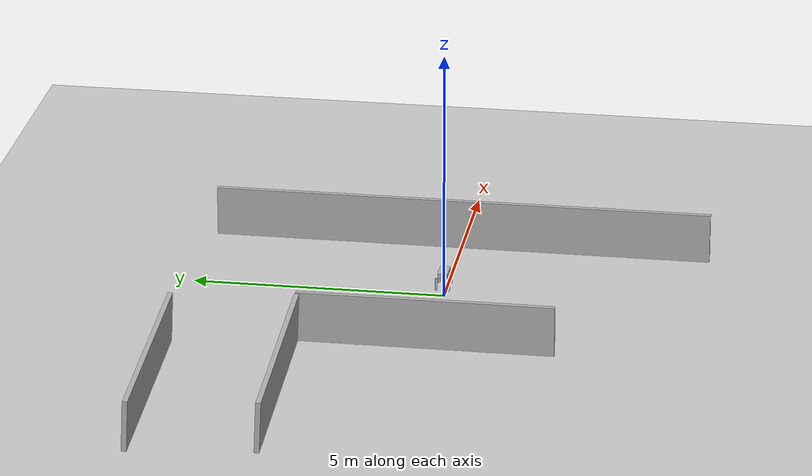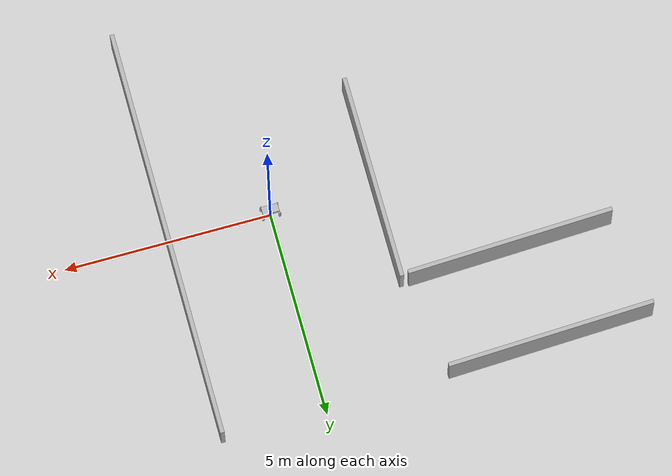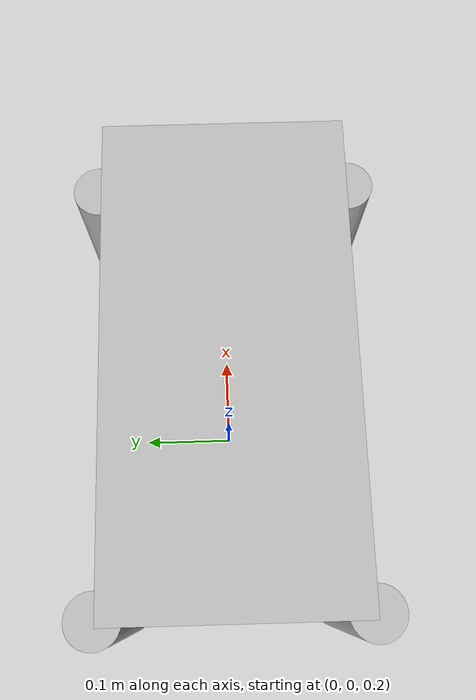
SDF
<sdf version='1.9'>
  <world name='quadruped_world'>
    <physics name='1ms' type='ignored'>
      <max_step_size>0.001</max_step_size>
      <real_time_factor>1</real_time_factor>
      <dart>
        <solver>
          <solver_type>pgs</solver_type>
        </solver>
      </dart>
      <real_time_update_rate>1000</real_time_update_rate>
    </physics>
    <plugin name='ignition::sim::systems::Physics' filename='ignition-gazebo-physics-system'/>
    <plugin name='ignition::sim::systems::UserCommands' filename='ignition-gazebo-user-commands-system'/>
    <plugin name='ignition::sim::systems::SceneBroadcaster' filename='ignition-gazebo-scene-broadcaster-system'/>
    <plugin name='ignition::sim::systems::Contact' filename='ignition-gazebo-contact-system'/>
    <gravity>0 0 -9.8</gravity>
    <magnetic_field>6e-06 2.3e-05 -4.2e-05</magnetic_field>
    <atmosphere type='adiabatic'/>
    <scene>
      <ambient>0.4 0.4 0.4 1</ambient>
      <background>0.7 0.7 0.7 1</background>
      <shadows>true</shadows>
    </scene>
    <model name='ground_plane'>
      <static>true</static>
      <link name='link'>
        <collision name='collision'>
          <geometry>
            <plane>
              <normal>0 0 1</normal>
              <size>100 100</size>
            </plane>
          </geometry>
          <surface>
            <friction>
              <ode>
                <mu>100</mu>
                <mu2>100</mu2>
              </ode>
            </friction>
            <bounce/>
            <contact/>
          </surface>
        </collision>
        <visual name='visual'>
          <geometry>
            <plane>
              <normal>0 0 1</normal>
              <size>100 100</size>
            </plane>
          </geometry>
          <material>
            <ambient>0.8 0.8 0.8 1</ambient>
            <diffuse>0.8 0.8 0.8 1</diffuse>
            <specular>0.8 0.8 0.8 1</specular>
          </material>
        </visual>
        <pose>0 0 0 0 -0 0</pose>
        <inertial>
          <pose>0 0 0 0 -0 0</pose>
          <mass>1</mass>
          <inertia>
            <ixx>1</ixx>
            <ixy>0</ixy>
            <ixz>0</ixz>
            <iyy>1</iyy>
            <iyz>0</iyz>
            <izz>1</izz>
          </inertia>
        </inertial>
        <enable_wind>false</enable_wind>
      </link>
      <pose>0 0 0 0 -0 0</pose>
      <self_collide>false</self_collide>
    </model>
    <model name='chai_back_wall'>
      <static>true</static>
      <pose>2.5 0 0.5 0 -0 0</pose>
      <link name='link'>
        <collision name='collision'>
          <geometry>
            <box>
              <size>0.1 10 1</size>
            </box>
          </geometry>
          <surface>
            <friction>
              <ode/>
            </friction>
            <bounce/>
            <contact/>
          </surface>
        </collision>
        <visual name='visual'>
          <geometry>
            <box>
              <size>0.1 10 1</size>
            </box>
          </geometry>
          <material>
            <ambient>0.7 0.7 0.7 1</ambient>
            <diffuse>0.7 0.7 0.7 1</diffuse>
            <specular>0.01 0.01 0.01 1</specular>
          </material>
        </visual>
        <pose>0 0 0 0 -0 0</pose>
        <inertial>
          <pose>0 0 0 0 -0 0</pose>
          <mass>1</mass>
          <inertia>
            <ixx>1</ixx>
            <ixy>0</ixy>
            <ixz>0</ixz>
            <iyy>1</iyy>
            <iyz>0</iyz>
            <izz>1</izz>
          </inertia>
        </inertial>
        <enable_wind>false</enable_wind>
      </link>
      <self_collide>false</self_collide>
    </model>
    <model name='chai_front_wall'>
      <static>true</static>
      <pose>-2.5 0 0.5 0 -0 0</pose>
      <link name='link'>
        <collision name='collision'>
          <geometry>
            <box>
              <size>0.1 5 1</size>
            </box>
          </geometry>
          <surface>
            <friction>
              <ode/>
            </friction>
            <bounce/>
            <contact/>
          </surface>
        </collision>
        <visual name='visual'>
          <geometry>
            <box>
              <size>0.1 5 1</size>
            </box>
          </geometry>
          <material>
            <ambient>0.7 0.7 0.7 1</ambient>
            <diffuse>0.7 0.7 0.7 1</diffuse>
            <specular>0.01 0.01 0.01 1</specular>
          </material>
        </visual>
        <pose>0 0 0 0 -0 0</pose>
        <inertial>
          <pose>0 0 0 0 -0 0</pose>
          <mass>1</mass>
          <inertia>
            <ixx>1</ixx>
            <ixy>0</ixy>
            <ixz>0</ixz>
            <iyy>1</iyy>
            <iyz>0</iyz>
            <izz>1</izz>
          </inertia>
        </inertial>
        <enable_wind>false</enable_wind>
      </link>
      <self_collide>false</self_collide>
    </model>
    <model name='chai_enterance_wall'>
      <static>true</static>
      <pose>-5.15868 2.37558 0.531992 0.001853 -0.043091 1.60937</pose>
      <link name='link'>
        <collision name='collision'>
          <geometry>
            <box>
              <size>0.1 5 1</size>
            </box>
          </geometry>
          <surface>
            <friction>
              <ode/>
            </friction>
            <bounce/>
            <contact/>
          </surface>
        </collision>
        <visual name='visual'>
          <geometry>
            <box>
              <size>0.1 5 1</size>
            </box>
          </geometry>
          <material>
            <ambient>0.7 0.7 0.7 1</ambient>
            <diffuse>0.7 0.7 0.7 1</diffuse>
            <specular>0.01 0.01 0.01 1</specular>
          </material>
        </visual>
        <pose>0 0 0 0 -0 0</pose>
        <inertial>
          <pose>0 0 0 0 -0 0</pose>
          <mass>1</mass>
          <inertia>
            <ixx>1</ixx>
            <ixy>0</ixy>
            <ixz>0</ixz>
            <iyy>1</iyy>
            <iyz>0</iyz>
            <izz>1</izz>
          </inertia>
        </inertial>
        <enable_wind>false</enable_wind>
      </link>
      <self_collide>false</self_collide>
    </model>
    <model name='quadruped'>
      <link name='base_link'>
        <inertial>
          <pose>0 0 0 0 -0 0</pose>
          <mass>5</mass>
          <inertia>
            <ixx>0.10000000000000001</ixx>
            <ixy>0</ixy>
            <ixz>0</ixz>
            <iyy>0.10000000000000001</iyy>
            <iyz>0</iyz>
            <izz>0.10000000000000001</izz>
          </inertia>
        </inertial>
        <collision name='base_link_collision'>
          <pose>0 0 0 0 0 0</pose>
          <geometry>
            <box>
              <size>0.4 0.2 0.1</size>
            </box>
          </geometry>
          <surface>
            <friction>
              <ode/>
            </friction>
            <bounce/>
            <contact/>
          </surface>
        </collision>
        <visual name='base_link_visual'>
          <pose>0 0 0 0 0 0</pose>
          <geometry>
            <box>
              <size>0.4 0.2 0.1</size>
            </box>
          </geometry>
        </visual>
        <pose>0 0 0 0 -0 0</pose>
        <enable_wind>false</enable_wind>
      </link>
      <joint name='BL_joint' type='revolute'>
        <pose>0 0 0 0 -0 0</pose>
        <parent>base_link</parent>
        <child>BL_leg</child>
        <axis>
          <xyz>0 1 0</xyz>
          <limit>
            <lower>-1.5700000000000001</lower>
            <upper>1.5700000000000001</upper>
            <effort>1000</effort>
            <velocity>10</velocity>
            <stiffness>100000000</stiffness>
            <dissipation>1</dissipation>
          </limit>
          <dynamics>
            <spring_reference>0</spring_reference>
            <spring_stiffness>0</spring_stiffness>
            <damping>0</damping>
            <friction>0</friction>
          </dynamics>
        </axis>
      </joint>
      <link name='BL_leg'>
        <pose>-0.2 0.12 -0.05 0 -0 0</pose>
        <inertial>
          <pose>0 0 -0.125 0 -0 0</pose>
          <mass>0.5</mass>
          <inertia>
            <ixx>0.01</ixx>
            <ixy>0</ixy>
            <ixz>0</ixz>
            <iyy>0.01</iyy>
            <iyz>0</iyz>
            <izz>0.01</izz>
          </inertia>
        </inertial>
        <collision name='BL_leg_collision'>
          <pose>0 0 -0.125 0 0 0</pose>
          <geometry>
            <cylinder>
              <length>0.25</length>
              <radius>0.025000000000000001</radius>
            </cylinder>
          </geometry>
          <surface>
            <friction>
              <ode/>
            </friction>
            <bounce/>
            <contact/>
          </surface>
        </collision>
        <visual name='BL_leg_visual'>
          <pose>0 0 -0.125 0 0 0</pose>
          <geometry>
            <cylinder>
              <length>0.25</length>
              <radius>0.025000000000000001</radius>
            </cylinder>
          </geometry>
        </visual>
        <enable_wind>false</enable_wind>
      </link>
      <joint name='BR_joint' type='revolute'>
        <pose>0 0 0 0 -0 0</pose>
        <parent>base_link</parent>
        <child>BR_leg</child>
        <axis>
          <xyz>0 1 0</xyz>
          <limit>
            <lower>-1.5700000000000001</lower>
            <upper>1.5700000000000001</upper>
            <effort>1000</effort>
            <velocity>10</velocity>
            <stiffness>100000000</stiffness>
            <dissipation>1</dissipation>
          </limit>
          <dynamics>
            <spring_reference>0</spring_reference>
            <spring_stiffness>0</spring_stiffness>
            <damping>0</damping>
            <friction>0</friction>
          </dynamics>
        </axis>
      </joint>
      <link name='BR_leg'>
        <pose>-0.2 -0.12 -0.05 0 -0 0</pose>
        <inertial>
          <pose>0 0 -0.125 0 -0 0</pose>
          <mass>0.5</mass>
          <inertia>
            <ixx>0.01</ixx>
            <ixy>0</ixy>
            <ixz>0</ixz>
            <iyy>0.01</iyy>
            <iyz>0</iyz>
            <izz>0.01</izz>
          </inertia>
        </inertial>
        <collision name='BR_leg_collision'>
          <pose>0 0 -0.125 0 0 0</pose>
          <geometry>
            <cylinder>
              <length>0.25</length>
              <radius>0.025000000000000001</radius>
            </cylinder>
          </geometry>
          <surface>
            <friction>
              <ode/>
            </friction>
            <bounce/>
            <contact/>
          </surface>
        </collision>
        <visual name='BR_leg_visual'>
          <pose>0 0 -0.125 0 0 0</pose>
          <geometry>
            <cylinder>
              <length>0.25</length>
              <radius>0.025000000000000001</radius>
            </cylinder>
          </geometry>
        </visual>
        <enable_wind>false</enable_wind>
      </link>
      <joint name='FL_joint' type='revolute'>
        <pose>0 0 0 0 -0 0</pose>
        <parent>base_link</parent>
        <child>FL_leg</child>
        <axis>
          <xyz>0 1 0</xyz>
          <limit>
            <lower>-1.5700000000000001</lower>
            <upper>1.5700000000000001</upper>
            <effort>1000</effort>
            <velocity>10</velocity>
            <stiffness>100000000</stiffness>
            <dissipation>1</dissipation>
          </limit>
          <dynamics>
            <spring_reference>0</spring_reference>
            <spring_stiffness>0</spring_stiffness>
            <damping>0</damping>
            <friction>0</friction>
          </dynamics>
        </axis>
      </joint>
      <link name='FL_leg'>
        <pose>0.2 0.12 -0.05 0 -0 0</pose>
        <inertial>
          <pose>0 0 -0.125 0 -0 0</pose>
          <mass>0.5</mass>
          <inertia>
            <ixx>0.01</ixx>
            <ixy>0</ixy>
            <ixz>0</ixz>
            <iyy>0.01</iyy>
            <iyz>0</iyz>
            <izz>0.01</izz>
          </inertia>
        </inertial>
        <collision name='FL_leg_collision'>
          <pose>0 0 -0.125 0 0 0</pose>
          <geometry>
            <cylinder>
              <length>0.25</length>
              <radius>0.025000000000000001</radius>
            </cylinder>
          </geometry>
          <surface>
            <friction>
              <ode/>
            </friction>
            <bounce/>
            <contact/>
          </surface>
        </collision>
        <visual name='FL_leg_visual'>
          <pose>0 0 -0.125 0 0 0</pose>
          <geometry>
            <cylinder>
              <length>0.25</length>
              <radius>0.025000000000000001</radius>
            </cylinder>
          </geometry>
        </visual>
        <enable_wind>false</enable_wind>
      </link>
      <joint name='FR_joint' type='revolute'>
        <pose>0 0 0 0 -0 0</pose>
        <parent>base_link</parent>
        <child>FR_leg</child>
        <axis>
          <xyz>0 1 0</xyz>
          <limit>
            <lower>-1.5700000000000001</lower>
            <upper>1.5700000000000001</upper>
            <effort>1000</effort>
            <velocity>10</velocity>
            <stiffness>100000000</stiffness>
            <dissipation>1</dissipation>
          </limit>
          <dynamics>
            <spring_reference>0</spring_reference>
            <spring_stiffness>0</spring_stiffness>
            <damping>0</damping>
            <friction>0</friction>
          </dynamics>
        </axis>
      </joint>
      <link name='FR_leg'>
        <pose>0.2 -0.12 -0.05 0 -0 0</pose>
        <inertial>
          <pose>0 0 -0.125 0 -0 0</pose>
          <mass>0.5</mass>
          <inertia>
            <ixx>0.01</ixx>
            <ixy>0</ixy>
            <ixz>0</ixz>
            <iyy>0.01</iyy>
            <iyz>0</iyz>
            <izz>0.01</izz>
          </inertia>
        </inertial>
        <collision name='FR_leg_collision'>
          <pose>0 0 -0.125 0 0 0</pose>
          <geometry>
            <cylinder>
              <length>0.25</length>
              <radius>0.025000000000000001</radius>
            </cylinder>
          </geometry>
          <surface>
            <friction>
              <ode/>
            </friction>
            <bounce/>
            <contact/>
          </surface>
        </collision>
        <visual name='FR_leg_visual'>
          <pose>0 0 -0.125 0 0 0</pose>
          <geometry>
            <cylinder>
              <length>0.25</length>
              <radius>0.025000000000000001</radius>
            </cylinder>
          </geometry>
        </visual>
        <enable_wind>false</enable_wind>
      </link>
      <plugin name='gz_ros2_control::GazeboSimROS2ControlPlugin' filename='gz_ros2_control-system'>
        <parameters>/home/ubuntu/quadruped_sim/leg_controllers.yaml</parameters>
      </plugin>
      <pose>0 0 0.5 0 -0 0</pose>
      <static>false</static>
      <self_collide>false</self_collide>
    </model>
    <model name='chai_enterance_wall_1'>
      <static>true</static>
      <pose>-5.45778 4.77148 0.531992 0.001853 -0.043091 1.60937</pose>
      <link name='link'>
        <collision name='collision'>
          <geometry>
            <box>
              <size>0.1 5 1</size>
            </box>
          </geometry>
          <surface>
            <friction>
              <ode/>
            </friction>
            <bounce/>
            <contact/>
          </surface>
        </collision>
        <visual name='visual'>
          <geometry>
            <box>
              <size>0.1 5 1</size>
            </box>
          </geometry>
          <material>
            <ambient>0.7 0.7 0.7 1</ambient>
            <diffuse>0.7 0.7 0.7 1</diffuse>
            <specular>0.01 0.01 0.01 1</specular>
          </material>
        </visual>
      </link>
      <self_collide>false</self_collide>
    </model>
    <light name='sun' type='directional'>
      <pose>0 0 10 0 -0 0</pose>
      <cast_shadows>true</cast_shadows>
      <intensity>1</intensity>
      <direction>-0.5 0.1 -0.9</direction>
      <diffuse>0.8 0.8 0.8 1</diffuse>
      <specular>0.2 0.2 0.2 1</specular>
      <attenuation>
        <range>10</range>
        <linear>1</linear>
        <constant>1</constant>
        <quadratic>0</quadratic>
      </attenuation>
      <spot>
        <inner_angle>0</inner_angle>
        <outer_angle>0</outer_angle>
        <falloff>0</falloff>
      </spot>
    </light>
  </world>
</sdf>
